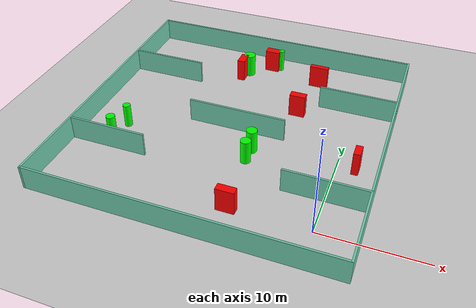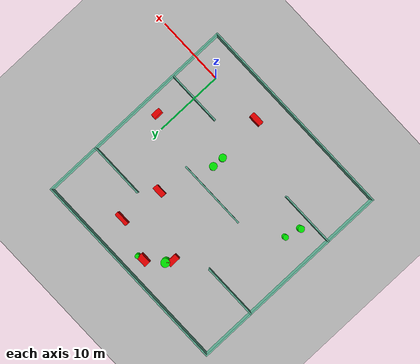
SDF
<sdf version="1.7">
 <world name="default">
  <light name="sun" type="directional">
   <pose>0 0 10 0 -0 0</pose>
   <diffuse>0.8 0.8 0.8 1</diffuse>
   <specular>0.2 0.2 0.2 1</specular>
   <attenuation>
    <range>1000</range>
    <constant>0.9</constant>
    <linear>0.01</linear>
    <quadratic>0.001</quadratic>
   </attenuation>
   <direction>-0.5 0.1 -0.9</direction>
   <spot><inner_angle>0</inner_angle><outer_angle>0</outer_angle><falloff>0</falloff></spot>
  </light>
  <model name="ground_plane">
   <static>1</static>
   <link name="link">
    <collision name="collision">
     <geometry><plane><normal>0 0 1</normal><size>100 100</size></plane></geometry>
     <surface>
      <contact><collide_bitmask>65535</collide_bitmask></contact>
      <friction><ode><mu>100</mu><mu2>50</mu2></ode></friction>
     </surface>
    </collision>
    <visual name="visual">
     <cast_shadows>0</cast_shadows>
     <geometry><plane><normal>0 0 1</normal><size>100 100</size></plane></geometry>
     <material>
      <script><uri>file://media/materials/scripts/gazebo.material</uri><name>Gazebo/Grey</name></script>
     </material>
    </visual>
   </link>
  </model>
  <gravity>0 0 -9.8</gravity>
  <magnetic_field>6e-06 2.3e-05 -4.2e-05</magnetic_field>
  <atmosphere type="adiabatic"/>
  <physics type="ode">
   <max_step_size>0.001</max_step_size>
   <real_time_factor>1</real_time_factor>
   <real_time_update_rate>1000</real_time_update_rate>
  </physics>
  <scene><ambient>0.4 0.4 0.4 1</ambient><background>0.7 0.7 0.7 1</background><shadows>1</shadows></scene>
  <spherical_coordinates>
   <surface_model>EARTH_WGS84</surface_model>
   <latitude_deg>0</latitude_deg>
   <longitude_deg>0</longitude_deg>
   <elevation>0</elevation>
   <heading_deg>0</heading_deg>
  </spherical_coordinates>
  <model name="my_base_walls">
   <link name="Wall_10">
    <collision name="Wall_10_Collision">
     <geometry><box><size>8.2 0.2 2.5</size></box></geometry>
     <pose>0 0 1.25 0 -0 0</pose>
    </collision>
    <visual name="Wall_10_Visual">
     <pose>0 0 1.25 0 -0 0</pose>
     <geometry><box><size>8.2 0.2 2.5</size></box></geometry>
     <material>
      <script><uri>file://media/materials/scripts/gazebo.material</uri><name>Gazebo/Grey</name></script>
      <ambient>0.435294 0.796078 0.67451 1</ambient>
     </material>
     <meta><layer>0</layer></meta>
    </visual>
    <pose>-11 -7 0 0 -0 0</pose>
   </link>
   <link name="Wall_12">
    <collision name="Wall_12_Collision">
     <geometry><box><size>8.2 0.2 2.5</size></box></geometry>
     <pose>0 0 1.25 0 -0 0</pose>
    </collision>
    <visual name="Wall_12_Visual">
     <pose>0 0 1.25 0 -0 0</pose>
     <geometry><box><size>8.2 0.2 2.5</size></box></geometry>
     <material>
      <script><uri>file://media/materials/scripts/gazebo.material</uri><name>Gazebo/Grey</name></script>
      <ambient>0.435294 0.796078 0.67451 1</ambient>
     </material>
     <meta><layer>0</layer></meta>
    </visual>
    <pose>-11 7 0 0 -0 0</pose>
   </link>
   <link name="Wall_14">
    <collision name="Wall_14_Collision">
     <geometry><box><size>8.2 0.2 2.5</size></box></geometry>
     <pose>0 0 1.25 0 -0 0</pose>
    </collision>
    <visual name="Wall_14_Visual">
     <pose>0 0 1.25 0 -0 0</pose>
     <geometry><box><size>8.2 0.2 2.5</size></box></geometry>
     <material>
      <script><uri>file://media/materials/scripts/gazebo.material</uri><name>Gazebo/Grey</name></script>
      <ambient>0.435294 0.796078 0.67451 1</ambient>
     </material>
     <meta><layer>0</layer></meta>
    </visual>
    <pose>11 7 0 0 -0 3.14159</pose>
   </link>
   <link name="Wall_16">
    <collision name="Wall_16_Collision">
     <geometry><box><size>10.2 0.2 2.5</size></box></geometry>
     <pose>0 0 1.25 0 -0 0</pose>
    </collision>
    <visual name="Wall_16_Visual">
     <pose>0 0 1.25 0 -0 0</pose>
     <geometry><box><size>10.2 0.2 2.5</size></box></geometry>
     <material>
      <script><uri>file://media/materials/scripts/gazebo.material</uri><name>Gazebo/Grey</name></script>
      <ambient>0.435294 0.796078 0.67451 1</ambient>
     </material>
     <meta><layer>0</layer></meta>
    </visual>
    <pose>0 0 0 0 -0 3.14159</pose>
   </link>
   <link name="Wall_2">
    <collision name="Wall_2_Collision">
     <geometry><box><size>30.2 0.2 2.5</size></box></geometry>
     <pose>0 0 1.25 0 -0 0</pose>
    </collision>
    <visual name="Wall_2_Visual">
     <pose>0 0 1.25 0 -0 0</pose>
     <geometry><box><size>30.2 0.2 2.5</size></box></geometry>
     <material>
      <script><uri>file://media/materials/scripts/gazebo.material</uri><name>Gazebo/Grey</name></script>
      <ambient>0.435294 0.796078 0.67451 1</ambient>
     </material>
     <meta><layer>0</layer></meta>
    </visual>
    <pose>0 -15 0 0 -0 3.14159</pose>
   </link>
   <link name="Wall_3">
    <collision name="Wall_3_Collision">
     <geometry><box><size>30.2 0.2 2.5</size></box></geometry>
     <pose>0 0 1.25 0 -0 0</pose>
    </collision>
    <visual name="Wall_3_Visual">
     <pose>0 0 1.25 0 -0 0</pose>
     <geometry><box><size>30.2 0.2 2.5</size></box></geometry>
     <material>
      <script><uri>file://media/materials/scripts/gazebo.material</uri><name>Gazebo/Grey</name></script>
      <ambient>0.435294 0.796078 0.67451 1</ambient>
     </material>
     <meta><layer>0</layer></meta>
    </visual>
    <pose>-15 0 0 0 -0 1.5708</pose>
   </link>
   <link name="Wall_4">
    <collision name="Wall_4_Collision">
     <geometry><box><size>30.2 0.2 2.5</size></box></geometry>
     <pose>0 0 1.25 0 -0 0</pose>
    </collision>
    <visual name="Wall_4_Visual">
     <pose>0 0 1.25 0 -0 0</pose>
     <geometry><box><size>30.2 0.2 2.5</size></box></geometry>
     <material>
      <script><uri>file://media/materials/scripts/gazebo.material</uri><name>Gazebo/Grey</name></script>
      <ambient>0.435294 0.796078 0.67451 1</ambient>
     </material>
     <meta><layer>0</layer></meta>
    </visual>
    <pose>0 15 0 0 -0 0</pose>
   </link>
   <link name="Wall_6">
    <collision name="Wall_6_Collision">
     <geometry><box><size>30.2 0.2 2.5</size></box></geometry>
     <pose>0 0 1.25 0 -0 0</pose>
    </collision>
    <visual name="Wall_6_Visual">
     <pose>0 0 1.25 0 -0 0</pose>
     <geometry><box><size>30.2 0.2 2.5</size></box></geometry>
     <material>
      <script><uri>file://media/materials/scripts/gazebo.material</uri><name>Gazebo/Grey</name></script>
      <ambient>0.435294 0.796078 0.67451 1</ambient>
     </material>
     <meta><layer>0</layer></meta>
    </visual>
    <pose>15 0 0 0 -0 1.5708</pose>
   </link>
   <link name="Wall_8">
    <collision name="Wall_8_Collision">
     <geometry><box><size>8.2 0.2 2.5</size></box></geometry>
     <pose>0 0 1.25 0 -0 0</pose>
    </collision>
    <visual name="Wall_8_Visual">
     <pose>0 0 1.25 0 -0 0</pose>
     <geometry><box><size>8.2 0.2 2.5</size></box></geometry>
     <material>
      <script><uri>file://media/materials/scripts/gazebo.material</uri><name>Gazebo/Grey</name></script>
      <ambient>0.435294 0.796078 0.67451 1</ambient>
     </material>
     <meta><layer>0</layer></meta>
    </visual>
    <pose>11 -7 0 0 -0 3.14159</pose>
   </link>
   <static>1</static>
   <pose>-11 11 0 0 -0 0</pose>
  </model>
  <model name="cylinder1">
   <static>1</static>
   <link name="link">
    <inertial>
     <mass>1</mass>
     <inertia><ixx>0.5</ixx><ixy>0</ixy><ixz>0</ixz><iyy>0.5</iyy><iyz>0</iyz><izz>1</izz></inertia>
    </inertial>
    <collision name="collision">
     <geometry><cylinder><radius>0.5236256142481513</radius><length>2.5</length></cylinder></geometry>
    </collision>
    <visual name="visual">
     <geometry><cylinder><radius>0.5236256142481513</radius><length>2.5</length></cylinder></geometry>
     <material>
      <ambient>0 1 0 1</ambient>
      <diffuse>0 1 0 1</diffuse>
      <specular>0.1 0.1 0.1 1</specular>
      <emissive>0 0 0 0</emissive>
     </material>
    </visual>
   </link>
   <pose>-8.429720988473772 6.6445577228892105 1.25 0 0 0</pose>
  </model>
  <model name="cylinder2">
   <static>1</static>
   <link name="link">
    <inertial>
     <mass>1</mass>
     <inertia><ixx>0.5</ixx><ixy>0</ixy><ixz>0</ixz><iyy>0.5</iyy><iyz>0</iyz><izz>1</izz></inertia>
    </inertial>
    <collision name="collision">
     <geometry><cylinder><radius>0.4616234257697265</radius><length>2.5</length></cylinder></geometry>
    </collision>
    <visual name="visual">
     <geometry><cylinder><radius>0.4616234257697265</radius><length>2.5</length></cylinder></geometry>
     <material>
      <ambient>0 1 0 1</ambient>
      <diffuse>0 1 0 1</diffuse>
      <specular>0.1 0.1 0.1 1</specular>
      <emissive>0 0 0 0</emissive>
     </material>
    </visual>
   </link>
   <pose>-22.339908844654936 5.509351813089715 1.25 0 0 0</pose>
  </model>
  <model name="cylinder3">
   <static>1</static>
   <link name="link">
    <inertial>
     <mass>1</mass>
     <inertia><ixx>0.5</ixx><ixy>0</ixy><ixz>0</ixz><iyy>0.5</iyy><iyz>0</iyz><izz>1</izz></inertia>
    </inertial>
    <collision name="collision">
     <geometry><cylinder><radius>0.543261472884352</radius><length>2.5</length></cylinder></geometry>
    </collision>
    <visual name="visual">
     <geometry><cylinder><radius>0.543261472884352</radius><length>2.5</length></cylinder></geometry>
     <material>
      <ambient>0 1 0 1</ambient>
      <diffuse>0 1 0 1</diffuse>
      <specular>0.1 0.1 0.1 1</specular>
      <emissive>0 0 0 0</emissive>
     </material>
    </visual>
   </link>
   <pose>-8.411234773364587 8.322120020961066 1.25 0 0 0</pose>
  </model>
  <model name="cylinder4">
   <static>1</static>
   <link name="link">
    <inertial>
     <mass>1</mass>
     <inertia><ixx>0.5</ixx><ixy>0</ixy><ixz>0</ixz><iyy>0.5</iyy><iyz>0</iyz><izz>1</izz></inertia>
    </inertial>
    <collision name="collision">
     <geometry><cylinder><radius>0.3890848971452626</radius><length>2.5</length></cylinder></geometry>
    </collision>
    <visual name="visual">
     <geometry><cylinder><radius>0.3890848971452626</radius><length>2.5</length></cylinder></geometry>
     <material>
      <ambient>0 1 0 1</ambient>
      <diffuse>0 1 0 1</diffuse>
      <specular>0.1 0.1 0.1 1</specular>
      <emissive>0 0 0 0</emissive>
     </material>
    </visual>
   </link>
   <pose>-21.76460617281849 7.748139391425347 1.25 0 0 0</pose>
  </model>
  <model name="cylinder5">
   <static>1</static>
   <link name="link">
    <inertial>
     <mass>1</mass>
     <inertia><ixx>0.5</ixx><ixy>0</ixy><ixz>0</ixz><iyy>0.5</iyy><iyz>0</iyz><izz>1</izz></inertia>
    </inertial>
    <collision name="collision">
     <geometry><cylinder><radius>0.6215353214569466</radius><length>2.5</length></cylinder></geometry>
    </collision>
    <visual name="visual">
     <geometry><cylinder><radius>0.6215353214569466</radius><length>2.5</length></cylinder></geometry>
     <material>
      <ambient>0 1 0 1</ambient>
      <diffuse>0 1 0 1</diffuse>
      <specular>0.1 0.1 0.1 1</specular>
      <emissive>0 0 0 0</emissive>
     </material>
    </visual>
   </link>
   <pose>-13.360406716410994 21.618675032970174 1.25 0 0 0</pose>
  </model>
  <model name="cylinder6">
   <static>1</static>
   <link name="link">
    <inertial>
     <mass>1</mass>
     <inertia><ixx>0.5</ixx><ixy>0</ixy><ixz>0</ixz><iyy>0.5</iyy><iyz>0</iyz><izz>1</izz></inertia>
    </inertial>
    <collision name="collision">
     <geometry><cylinder><radius>0.31214415072574786</radius><length>2.5</length></cylinder></geometry>
    </collision>
    <visual name="visual">
     <geometry><cylinder><radius>0.31214415072574786</radius><length>2.5</length></cylinder></geometry>
     <material>
      <ambient>0 1 0 1</ambient>
      <diffuse>0 1 0 1</diffuse>
      <specular>0.1 0.1 0.1 1</specular>
      <emissive>0 0 0 0</emissive>
     </material>
    </visual>
   </link>
   <pose>-10.188183808114006 23.721232031642437 1.25 0 0 0</pose>
  </model>
  <model name="box1">
   <static>1</static>
   <link name="link">
    <inertial>
     <mass>1</mass>
     <inertia><ixx>0.083</ixx><ixy>0</ixy><ixz>0</ixz><iyy>0.083</iyy><iyz>0</iyz><izz>0.083</izz></inertia>
    </inertial>
    <collision name="collision">
     <geometry><box><size>1.801461215927825 0.7690785945844738 2.5</size></box></geometry>
    </collision>
    <visual name="visual">
     <geometry><box><size>1.801461215927825 0.7690785945844738 2.5</size></box></geometry>
     <material>
      <ambient>1 0 0 1</ambient>
      <diffuse>1 0 0 1</diffuse>
      <specular>0.1 0.1 0.1 1</specular>
      <emissive>0 0 0 0</emissive>
     </material>
    </visual>
    <sensor name="my_contact" type="contact">
     <contact><collision>box_collision</collision><topic>__default_topic__</topic></contact>
    </sensor>
   </link>
   <pose>-7.76851826704995 -0.08002310115217925 1.25 0 0 0</pose>
  </model>
  <model name="box2">
   <static>1</static>
   <link name="link">
    <inertial>
     <mass>1</mass>
     <inertia><ixx>0.083</ixx><ixy>0</ixy><ixz>0</ixz><iyy>0.083</iyy><iyz>0</iyz><izz>0.083</izz></inertia>
    </inertial>
    <collision name="collision">
     <geometry><box><size>1.661921630909531 0.7840633151643588 2.5</size></box></geometry>
    </collision>
    <visual name="visual">
     <geometry><box><size>1.661921630909531 0.7840633151643588 2.5</size></box></geometry>
     <material>
      <ambient>1 0 0 1</ambient>
      <diffuse>1 0 0 1</diffuse>
      <specular>0.1 0.1 0.1 1</specular>
      <emissive>0 0 0 0</emissive>
     </material>
    </visual>
    <sensor name="my_contact" type="contact">
     <contact><collision>box_collision</collision><topic>__default_topic__</topic></contact>
    </sensor>
   </link>
   <pose>-5.905425536797413 15.744585187724638 1.25 0 0 0</pose>
  </model>
  <model name="box3">
   <static>1</static>
   <link name="link">
    <inertial>
     <mass>1</mass>
     <inertia><ixx>0.083</ixx><ixy>0</ixy><ixz>0</ixz><iyy>0.083</iyy><iyz>0</iyz><izz>0.083</izz></inertia>
    </inertial>
    <collision name="collision">
     <geometry><box><size>2.0103551481604103 0.5418780984287972 2.5</size></box></geometry>
    </collision>
    <visual name="visual">
     <geometry><box><size>2.0103551481604103 0.5418780984287972 2.5</size></box></geometry>
     <material>
      <ambient>1 0 0 1</ambient>
      <diffuse>1 0 0 1</diffuse>
      <specular>0.1 0.1 0.1 1</specular>
      <emissive>0 0 0 0</emissive>
     </material>
    </visual>
    <sensor name="my_contact" type="contact">
     <contact><collision>box_collision</collision><topic>__default_topic__</topic></contact>
    </sensor>
   </link>
   <pose>-5.177890450064194 21.85768813468316 1.25 0 0 0</pose>
  </model>
  <model name="box4">
   <static>1</static>
   <link name="link">
    <inertial>
     <mass>1</mass>
     <inertia><ixx>0.083</ixx><ixy>0</ixy><ixz>0</ixz><iyy>0.083</iyy><iyz>0</iyz><izz>0.083</izz></inertia>
    </inertial>
    <collision name="collision">
     <geometry><box><size>0.818569057119664 1.5667374833268122 2.5</size></box></geometry>
    </collision>
    <visual name="visual">
     <geometry><box><size>0.818569057119664 1.5667374833268122 2.5</size></box></geometry>
     <material>
      <ambient>1 0 0 1</ambient>
      <diffuse>1 0 0 1</diffuse>
      <specular>0.1 0.1 0.1 1</specular>
      <emissive>0 0 0 0</emissive>
     </material>
    </visual>
    <sensor name="my_contact" type="contact">
     <contact><collision>box_collision</collision><topic>__default_topic__</topic></contact>
    </sensor>
   </link>
   <pose>-13.83221213292204 20.67148126152986 1.25 0 0 0</pose>
  </model>
  <model name="box5">
   <static>1</static>
   <link name="link">
    <inertial>
     <mass>1</mass>
     <inertia><ixx>0.083</ixx><ixy>0</ixy><ixz>0</ixz><iyy>0.083</iyy><iyz>0</iyz><izz>0.083</izz></inertia>
    </inertial>
    <collision name="collision">
     <geometry><box><size>0.6822532968187845 1.3562600342694486 2.5</size></box></geometry>
    </collision>
    <visual name="visual">
     <geometry><box><size>0.6822532968187845 1.3562600342694486 2.5</size></box></geometry>
     <material>
      <ambient>1 0 0 1</ambient>
      <diffuse>1 0 0 1</diffuse>
      <specular>0.1 0.1 0.1 1</specular>
      <emissive>0 0 0 0</emissive>
     </material>
    </visual>
    <sensor name="my_contact" type="contact">
     <contact><collision>box_collision</collision><topic>__default_topic__</topic></contact>
    </sensor>
   </link>
   <pose>1.793271585497724 8.999327728703463 1.25 0 0 0</pose>
  </model>
  <model name="box6">
   <static>1</static>
   <link name="link">
    <inertial>
     <mass>1</mass>
     <inertia><ixx>0.083</ixx><ixy>0</ixy><ixz>0</ixz><iyy>0.083</iyy><iyz>0</iyz><izz>0.083</izz></inertia>
    </inertial>
    <collision name="collision">
     <geometry><box><size>1.5974507971748841 0.8959564839119962 2.5</size></box></geometry>
    </collision>
    <visual name="visual">
     <geometry><box><size>1.5974507971748841 0.8959564839119962 2.5</size></box></geometry>
     <material>
      <ambient>1 0 0 1</ambient>
      <diffuse>1 0 0 1</diffuse>
      <specular>0.1 0.1 0.1 1</specular>
      <emissive>0 0 0 0</emissive>
     </material>
    </visual>
    <sensor name="my_contact" type="contact">
     <contact><collision>box_collision</collision><topic>__default_topic__</topic></contact>
    </sensor>
   </link>
   <pose>-11.103636932607841 23.48512605921179 1.25 0 0 0</pose>
  </model>
 </world>
</sdf>
